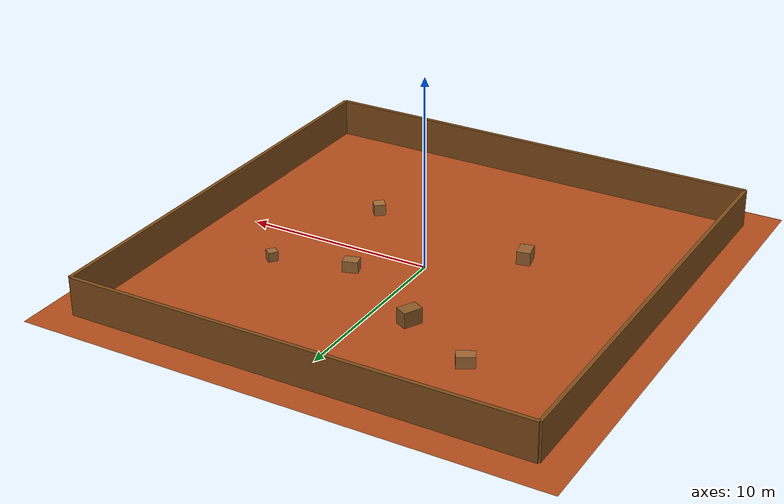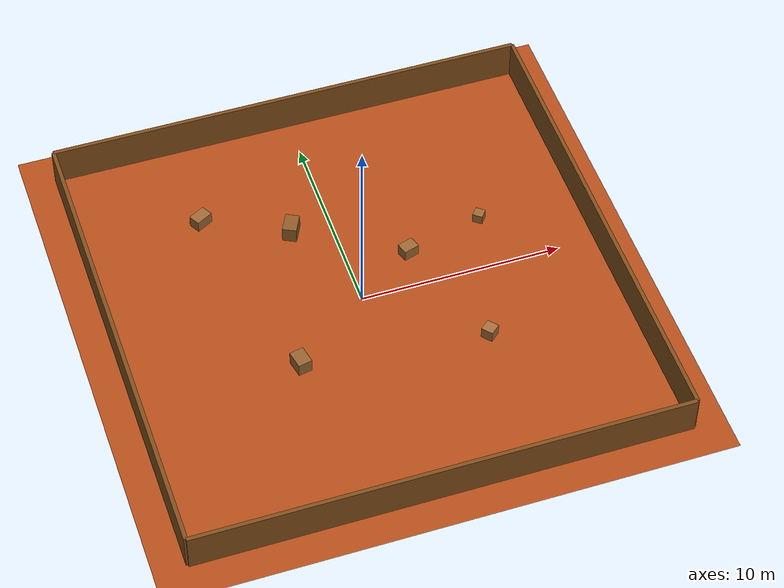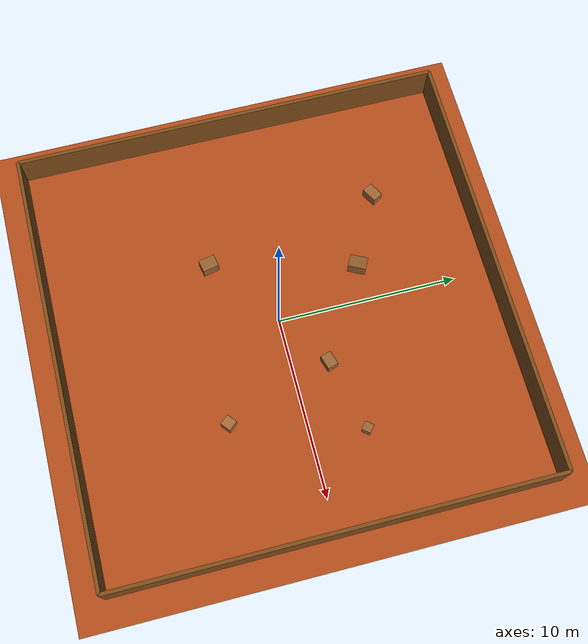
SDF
<?xml version="1.0"?>
<sdf version="1.6">
  <world name="level_1">

    <!-- Physics -->
    <physics name="default_physics" type="ode">
      <max_step_size>0.001</max_step_size>
      <real_time_factor>1</real_time_factor>
      <real_time_update_rate>1000</real_time_update_rate>
    </physics>

    <!-- Lighting -->
    <light name="sun" type="directional">
      <cast_shadows>true</cast_shadows>
      <pose>0 0 100 0 -0 0</pose>
      <diffuse>0.8 0.6 0.4 1</diffuse>
      <specular>0.2 0.2 0.2 1</specular>
      <attenuation>
        <range>1000</range>
        <constant>0.9</constant>
        <linear>0.01</linear>
        <quadratic>0.001</quadratic>
      </attenuation>
      <direction>-0.5 0.5 -1</direction>
    </light>

    <!-- Mars-like ground -->
    <model name="ground_plane">
      <static>true</static>
      <link name="link">
        <collision name="collision">
          <geometry>
            <plane><normal>0 0 1</normal><size>50 50</size></plane>
          </geometry>
          <surface>
            <friction><ode><mu>0.8</mu><mu2>0.8</mu2></ode></friction>
          </surface>
        </collision>
        <visual name="visual">
          <geometry>
            <plane><normal>0 0 1</normal><size>50 50</size></plane>
          </geometry>
          <material>
            <ambient>0.7 0.3 0.1 1</ambient>
            <diffuse>0.7 0.3 0.1 1</diffuse>
          </material>
        </visual>
      </link>
    </model>

    <!-- Boundary walls (invisible collision) -->
    <model name="wall_north">
      <static>true</static>
      <pose>0 12 1 0 0 0</pose>
      <link name="link">
        <collision name="collision">
          <geometry><box><size>24 0.2 2</size></box></geometry>
        </collision>
        <visual name="visual">
          <geometry><box><size>24 0.2 2</size></box></geometry>
          <material><ambient>0.5 0.3 0.1 1</ambient></material>
        </visual>
      </link>
    </model>

    <model name="wall_south">
      <static>true</static>
      <pose>0 -12 1 0 0 0</pose>
      <link name="link">
        <collision name="collision">
          <geometry><box><size>24 0.2 2</size></box></geometry>
        </collision>
        <visual name="visual">
          <geometry><box><size>24 0.2 2</size></box></geometry>
          <material><ambient>0.5 0.3 0.1 1</ambient></material>
        </visual>
      </link>
    </model>

    <model name="wall_east">
      <static>true</static>
      <pose>12 0 1 0 0 0</pose>
      <link name="link">
        <collision name="collision">
          <geometry><box><size>0.2 24 2</size></box></geometry>
        </collision>
        <visual name="visual">
          <geometry><box><size>0.2 24 2</size></box></geometry>
          <material><ambient>0.5 0.3 0.1 1</ambient></material>
        </visual>
      </link>
    </model>

    <model name="wall_west">
      <static>true</static>
      <pose>-12 0 1 0 0 0</pose>
      <link name="link">
        <collision name="collision">
          <geometry><box><size>0.2 24 2</size></box></geometry>
        </collision>
        <visual name="visual">
          <geometry><box><size>0.2 24 2</size></box></geometry>
          <material><ambient>0.5 0.3 0.1 1</ambient></material>
        </visual>
      </link>
    </model>

    <!-- LEVEL 1 OBSTACLES: sparse rocks (6 obstacles) -->
    <!-- Rock 1 -->
    <model name="rock_1">
      <static>true</static>
      <pose>3.0 2.0 0.3 0 0 0.3</pose>
      <link name="link">
        <collision name="collision">
          <geometry><box><size>0.8 0.6 0.6</size></box></geometry>
        </collision>
        <visual name="visual">
          <geometry><box><size>0.8 0.6 0.6</size></box></geometry>
          <material><ambient>0.6 0.4 0.2 1</ambient></material>
        </visual>
      </link>
    </model>

    <!-- Rock 2 -->
    <model name="rock_2">
      <static>true</static>
      <pose>-2.0 5.0 0.4 0 0 1.1</pose>
      <link name="link">
        <collision name="collision">
          <geometry><box><size>1.0 0.7 0.8</size></box></geometry>
        </collision>
        <visual name="visual">
          <geometry><box><size>1.0 0.7 0.8</size></box></geometry>
          <material><ambient>0.55 0.35 0.15 1</ambient></material>
        </visual>
      </link>
    </model>

    <!-- Rock 3 -->
    <model name="rock_3">
      <static>true</static>
      <pose>5.0 -4.0 0.3 0 0 0.7</pose>
      <link name="link">
        <collision name="collision">
          <geometry><box><size>0.6 0.6 0.6</size></box></geometry>
        </collision>
        <visual name="visual">
          <geometry><box><size>0.6 0.6 0.6</size></box></geometry>
          <material><ambient>0.65 0.42 0.22 1</ambient></material>
        </visual>
      </link>
    </model>

    <!-- Rock 4 -->
    <model name="rock_4">
      <static>true</static>
      <pose>-4.0 -3.0 0.35 0 0 0.2</pose>
      <link name="link">
        <collision name="collision">
          <geometry><box><size>0.7 0.9 0.7</size></box></geometry>
        </collision>
        <visual name="visual">
          <geometry><box><size>0.7 0.9 0.7</size></box></geometry>
          <material><ambient>0.58 0.38 0.18 1</ambient></material>
        </visual>
      </link>
    </model>

    <!-- Rock 5 -->
    <model name="rock_5">
      <static>true</static>
      <pose>7.0 3.0 0.25 0 0 0.9</pose>
      <link name="link">
        <collision name="collision">
          <geometry><box><size>0.5 0.5 0.5</size></box></geometry>
        </collision>
        <visual name="visual">
          <geometry><box><size>0.5 0.5 0.5</size></box></geometry>
          <material><ambient>0.6 0.4 0.2 1</ambient></material>
        </visual>
      </link>
    </model>

    <!-- Rock 6 -->
    <model name="rock_6">
      <static>true</static>
      <pose>-6.0 7.0 0.3 0 0 0.5</pose>
      <link name="link">
        <collision name="collision">
          <geometry><box><size>0.9 0.6 0.6</size></box></geometry>
        </collision>
        <visual name="visual">
          <geometry><box><size>0.9 0.6 0.6</size></box></geometry>
          <material><ambient>0.62 0.40 0.20 1</ambient></material>
        </visual>
      </link>
    </model>

    <!-- Gazebo ROS plugin -->
    <plugin name="gazebo_ros_state" filename="libgazebo_ros_state.so">
      <ros>
        <namespace>/</namespace>
      </ros>
      <update_rate>10.0</update_rate>
    </plugin>

  </world>
</sdf>
